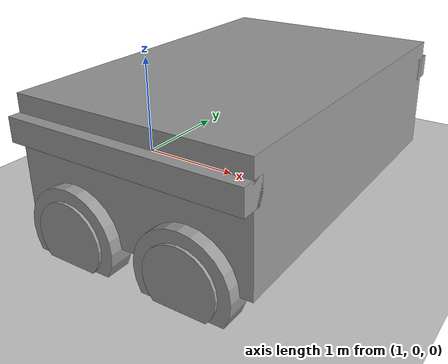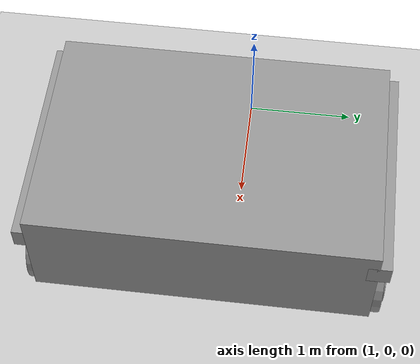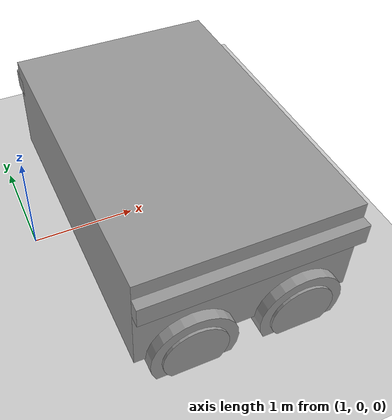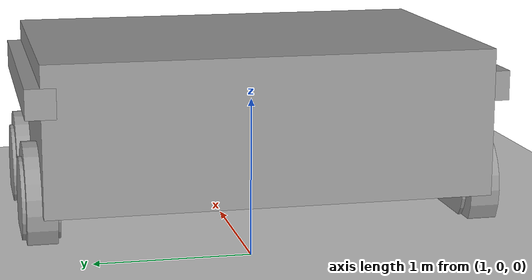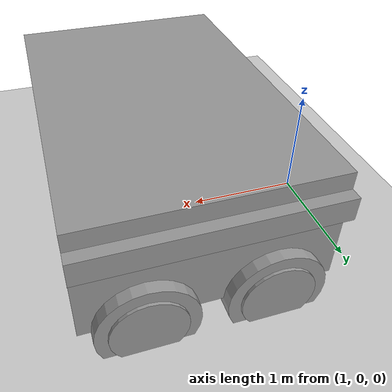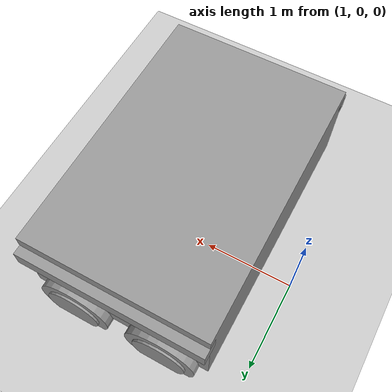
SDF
<sdf version="1.6">
 <world name="default">
  <light name="sun" type="directional">
   <pose>0 0 10 0 -0 0</pose>
   <diffuse>0.8 0.8 0.8 1</diffuse>
   <specular>0.2 0.2 0.2 1</specular>
   <attenuation>
    <range>1000</range>
    <constant>0.9</constant>
    <linear>0.01</linear>
    <quadratic>0.001</quadratic>
   </attenuation>
   <direction>-0.5 0.1 -0.9</direction>
  </light>
  <model name="ground_plane">
   <static>1</static>
   <link name="link">
    <collision name="collision">
     <geometry><plane><normal>0 0 1</normal><size>100 100</size></plane></geometry>
     <surface><friction><ode><mu>100</mu><mu2>50</mu2></ode></friction></surface>
    </collision>
    <visual name="visual">
     <cast_shadows>0</cast_shadows>
     <geometry><plane><normal>0 0 1</normal><size>100 100</size></plane></geometry>
     <material>
      <script><uri>file://media/materials/scripts/gazebo.material</uri><name>Gazebo/Grey</name></script>
     </material>
    </visual>
   </link>
  </model>
  <gravity>0 0 -9.8</gravity>
  <magnetic_field>6e-06 2.3e-05 -4.2e-05</magnetic_field>
  <atmosphere type="adiabatic"/>
  <physics name="default_physics" default="0" type="ode">
   <max_step_size>0.001</max_step_size>
   <real_time_factor>1</real_time_factor>
   <real_time_update_rate>1000</real_time_update_rate>
  </physics>
  <scene><ambient>0.4 0.4 0.4 1</ambient><background>0.7 0.7 0.7 1</background><shadows>1</shadows></scene>
  <spherical_coordinates>
   <surface_model>EARTH_WGS84</surface_model>
   <latitude_deg>0</latitude_deg>
   <longitude_deg>0</longitude_deg>
   <elevation>0</elevation>
   <heading_deg>0</heading_deg>
  </spherical_coordinates>
  <model name="unit_box">
   <link name="base">
    <inertial>
     <mass>1</mass>
     <inertia>
      <ixx>0.166667</ixx>
      <ixy>0</ixy>
      <ixz>0</ixz>
      <iyy>0.166667</iyy>
      <iyz>0</iyz>
      <izz>0.166667</izz>
     </inertia>
    </inertial>
    <pose>0 0 1 0 -0 0</pose>
    <visual name="visual">
     <geometry><box><size>2 3 1</size></box></geometry>
     <material>
      <script><name>Gazebo/Grey</name><uri>file://media/materials/scripts/gazebo.material</uri></script>
      <shader type="pixel"><normal_map>__default__</normal_map></shader>
      <ambient>0.3 0.3 0.3 1</ambient>
      <diffuse>0.7 0.7 0.7 1</diffuse>
      <specular>0.01 0.01 0.01 1</specular>
      <emissive>0 0 0 1</emissive>
     </material>
    </visual>
    <collision name="collision">
     <geometry><box><size>2 3 1</size></box></geometry>
     <surface>
      <friction>
       <ode><mu>1</mu><mu2>1</mu2><fdir1>0 0 0</fdir1><slip1>0</slip1><slip2>0</slip2></ode>
       <torsional>
        <coefficient>1</coefficient>
        <patch_radius>0</patch_radius>
        <surface_radius>0</surface_radius>
        <use_patch_radius>1</use_patch_radius>
        <ode><slip>0</slip></ode>
       </torsional>
      </friction>
      <bounce><restitution_coefficient>0</restitution_coefficient><threshold>1e+06</threshold></bounce>
      <contact>
       <collide_without_contact>0</collide_without_contact>
       <collide_without_contact_bitmask>1</collide_without_contact_bitmask>
       <collide_bitmask>1</collide_bitmask>
       <ode>
        <soft_cfm>0</soft_cfm>
        <soft_erp>0.2</soft_erp>
        <kp>1e+13</kp>
        <kd>1</kd>
        <max_vel>0.01</max_vel>
        <min_depth>0</min_depth>
       </ode>
       <bullet>
        <split_impulse>1</split_impulse>
        <split_impulse_penetration_threshold>-0.01</split_impulse_penetration_threshold>
        <soft_cfm>0</soft_cfm>
        <soft_erp>0.2</soft_erp>
        <kp>1e+13</kp>
        <kd>1</kd>
       </bullet>
      </contact>
     </surface>
    </collision>
   </link>
   <link name="link_left">
    <inertial>
     <mass>1</mass>
     <inertia>
      <ixx>0.166667</ixx>
      <ixy>0</ixy>
      <ixz>0</ixz>
      <iyy>0.166667</iyy>
      <iyz>0</iyz>
      <izz>0.166667</izz>
     </inertia>
    </inertial>
    <pose>0 1.5 1.25 0 -0 0</pose>
    <visual name="visual">
     <geometry><box><size>2 0.2 0.2</size></box></geometry>
     <material>
      <lighting>1</lighting>
      <script><uri>file://media/materials/scripts/gazebo.material</uri><name>Gazebo/Grey</name></script>
      <shader type="pixel"><normal_map>__default__</normal_map></shader>
      <ambient>0.3 0.3 0.3 1</ambient>
      <diffuse>0.7 0.7 0.7 1</diffuse>
      <specular>0.01 0.01 0.01 1</specular>
      <emissive>0 0 0 1</emissive>
     </material>
    </visual>
    <collision name="collision">
     <geometry><box><size>2 0.2 0.2</size></box></geometry>
     <surface>
      <friction>
       <ode><mu>1</mu><mu2>1</mu2><fdir1>0 0 0</fdir1><slip1>0</slip1><slip2>0</slip2></ode>
       <torsional>
        <coefficient>1</coefficient>
        <patch_radius>0</patch_radius>
        <surface_radius>0</surface_radius>
        <use_patch_radius>1</use_patch_radius>
        <ode><slip>0</slip></ode>
       </torsional>
      </friction>
      <bounce><restitution_coefficient>0</restitution_coefficient><threshold>1e+06</threshold></bounce>
      <contact>
       <collide_without_contact>0</collide_without_contact>
       <collide_without_contact_bitmask>1</collide_without_contact_bitmask>
       <collide_bitmask>1</collide_bitmask>
       <ode>
        <soft_cfm>0</soft_cfm>
        <soft_erp>0.2</soft_erp>
        <kp>1e+13</kp>
        <kd>1</kd>
        <max_vel>0.01</max_vel>
        <min_depth>0</min_depth>
       </ode>
       <bullet>
        <split_impulse>1</split_impulse>
        <split_impulse_penetration_threshold>-0.01</split_impulse_penetration_threshold>
        <soft_cfm>0</soft_cfm>
        <soft_erp>0.2</soft_erp>
        <kp>1e+13</kp>
        <kd>1</kd>
       </bullet>
      </contact>
     </surface>
    </collision>
   </link>
   <link name="link_right">
    <inertial>
     <mass>1</mass>
     <inertia>
      <ixx>0.166667</ixx>
      <ixy>0</ixy>
      <ixz>0</ixz>
      <iyy>0.166667</iyy>
      <iyz>0</iyz>
      <izz>0.166667</izz>
     </inertia>
    </inertial>
    <pose>-0 -1.5 1.25 -1e-05 -0 0</pose>
    <visual name="visual">
     <geometry><box><size>2 0.2 0.2</size></box></geometry>
     <material>
      <lighting>1</lighting>
      <script><uri>file://media/materials/scripts/gazebo.material</uri><name>Gazebo/Grey</name></script>
      <shader type="pixel"><normal_map>__default__</normal_map></shader>
      <ambient>0.3 0.3 0.3 1</ambient>
      <diffuse>0.7 0.7 0.7 1</diffuse>
      <specular>0.01 0.01 0.01 1</specular>
      <emissive>0 0 0 1</emissive>
     </material>
    </visual>
    <collision name="collision">
     <geometry><box><size>2 0.2 0.2</size></box></geometry>
     <surface>
      <friction>
       <ode><mu>1</mu><mu2>1</mu2><fdir1>0 0 0</fdir1><slip1>0</slip1><slip2>0</slip2></ode>
       <torsional>
        <coefficient>1</coefficient>
        <patch_radius>0</patch_radius>
        <surface_radius>0</surface_radius>
        <use_patch_radius>1</use_patch_radius>
        <ode><slip>0</slip></ode>
       </torsional>
      </friction>
      <bounce><restitution_coefficient>0</restitution_coefficient><threshold>1e+06</threshold></bounce>
      <contact>
       <collide_without_contact>0</collide_without_contact>
       <collide_without_contact_bitmask>1</collide_without_contact_bitmask>
       <collide_bitmask>1</collide_bitmask>
       <ode>
        <soft_cfm>0</soft_cfm>
        <soft_erp>0.2</soft_erp>
        <kp>1e+13</kp>
        <kd>1</kd>
        <max_vel>0.01</max_vel>
        <min_depth>0</min_depth>
       </ode>
       <bullet>
        <split_impulse>1</split_impulse>
        <split_impulse_penetration_threshold>-0.01</split_impulse_penetration_threshold>
        <soft_cfm>0</soft_cfm>
        <soft_erp>0.2</soft_erp>
        <kp>1e+13</kp>
        <kd>1</kd>
       </bullet>
      </contact>
     </surface>
    </collision>
   </link>
   <link name="link_rf_rev">
    <inertial>
     <mass>1</mass>
     <inertia><ixx>0.145833</ixx><ixy>0</ixy><ixz>0</ixz><iyy>0.145833</iyy><iyz>0</iyz><izz>0.125</izz></inertia>
    </inertial>
    <pose>0.5 -1.5 0.5 1.5708 -0 0</pose>
    <visual name="visual">
     <geometry><cylinder><radius>0.4</radius><length>0.2</length></cylinder></geometry>
     <material>
      <lighting>1</lighting>
      <script><uri>file://media/materials/scripts/gazebo.material</uri><name>Gazebo/Grey</name></script>
      <shader type="pixel"><normal_map>__default__</normal_map></shader>
      <ambient>0.3 0.3 0.3 1</ambient>
      <diffuse>0.7 0.7 0.7 1</diffuse>
      <specular>0.01 0.01 0.01 1</specular>
      <emissive>0 0 0 1</emissive>
     </material>
    </visual>
    <collision name="collision">
     <geometry><cylinder><radius>0.4</radius><length>0.2</length></cylinder></geometry>
     <surface>
      <friction>
       <ode><mu>1</mu><mu2>1</mu2><fdir1>0 0 0</fdir1><slip1>0</slip1><slip2>0</slip2></ode>
       <torsional>
        <coefficient>1</coefficient>
        <patch_radius>0</patch_radius>
        <surface_radius>0</surface_radius>
        <use_patch_radius>1</use_patch_radius>
        <ode><slip>0</slip></ode>
       </torsional>
      </friction>
      <bounce><restitution_coefficient>0</restitution_coefficient><threshold>1e+06</threshold></bounce>
      <contact>
       <collide_without_contact>0</collide_without_contact>
       <collide_without_contact_bitmask>1</collide_without_contact_bitmask>
       <collide_bitmask>1</collide_bitmask>
       <ode>
        <soft_cfm>0</soft_cfm>
        <soft_erp>0.2</soft_erp>
        <kp>1e+13</kp>
        <kd>1</kd>
        <max_vel>0.01</max_vel>
        <min_depth>0</min_depth>
       </ode>
       <bullet>
        <split_impulse>1</split_impulse>
        <split_impulse_penetration_threshold>-0.01</split_impulse_penetration_threshold>
        <soft_cfm>0</soft_cfm>
        <soft_erp>0.2</soft_erp>
        <kp>1e+13</kp>
        <kd>1</kd>
       </bullet>
      </contact>
     </surface>
    </collision>
   </link>
   <link name="link_lf_rev">
    <inertial>
     <mass>1</mass>
     <inertia><ixx>0.145833</ixx><ixy>0</ixy><ixz>0</ixz><iyy>0.145833</iyy><iyz>0</iyz><izz>0.125</izz></inertia>
    </inertial>
    <pose>0.5 1.5 0.5 1.57079 -0 0</pose>
    <visual name="visual">
     <geometry><cylinder><radius>0.4</radius><length>0.2</length></cylinder></geometry>
     <material>
      <lighting>1</lighting>
      <script><uri>file://media/materials/scripts/gazebo.material</uri><name>Gazebo/Grey</name></script>
      <shader type="pixel"><normal_map>__default__</normal_map></shader>
      <ambient>0.3 0.3 0.3 1</ambient>
      <diffuse>0.7 0.7 0.7 1</diffuse>
      <specular>0.01 0.01 0.01 1</specular>
      <emissive>0 0 0 1</emissive>
     </material>
    </visual>
    <collision name="collision">
     <geometry><cylinder><radius>0.4</radius><length>0.2</length></cylinder></geometry>
     <surface>
      <friction>
       <ode><mu>1</mu><mu2>1</mu2><fdir1>0 0 0</fdir1><slip1>0</slip1><slip2>0</slip2></ode>
       <torsional>
        <coefficient>1</coefficient>
        <patch_radius>0</patch_radius>
        <surface_radius>0</surface_radius>
        <use_patch_radius>1</use_patch_radius>
        <ode><slip>0</slip></ode>
       </torsional>
      </friction>
      <bounce><restitution_coefficient>0</restitution_coefficient><threshold>1e+06</threshold></bounce>
      <contact>
       <collide_without_contact>0</collide_without_contact>
       <collide_without_contact_bitmask>1</collide_without_contact_bitmask>
       <collide_bitmask>1</collide_bitmask>
       <ode>
        <soft_cfm>0</soft_cfm>
        <soft_erp>0.2</soft_erp>
        <kp>1e+13</kp>
        <kd>1</kd>
        <max_vel>0.01</max_vel>
        <min_depth>0</min_depth>
       </ode>
       <bullet>
        <split_impulse>1</split_impulse>
        <split_impulse_penetration_threshold>-0.01</split_impulse_penetration_threshold>
        <soft_cfm>0</soft_cfm>
        <soft_erp>0.2</soft_erp>
        <kp>1e+13</kp>
        <kd>1</kd>
       </bullet>
      </contact>
     </surface>
    </collision>
   </link>
   <link name="link_rb_rev">
    <inertial>
     <mass>1</mass>
     <inertia><ixx>0.145833</ixx><ixy>0</ixy><ixz>0</ixz><iyy>0.145833</iyy><iyz>0</iyz><izz>0.125</izz></inertia>
    </inertial>
    <pose>-0.5 -1.5 0.5 1.5708 -0 0</pose>
    <visual name="visual">
     <geometry><cylinder><radius>0.4</radius><length>0.2</length></cylinder></geometry>
     <material>
      <lighting>1</lighting>
      <script><uri>file://media/materials/scripts/gazebo.material</uri><name>Gazebo/Grey</name></script>
      <shader type="pixel"><normal_map>__default__</normal_map></shader>
      <ambient>0.3 0.3 0.3 1</ambient>
      <diffuse>0.7 0.7 0.7 1</diffuse>
      <specular>0.01 0.01 0.01 1</specular>
      <emissive>0 0 0 1</emissive>
     </material>
    </visual>
    <collision name="collision">
     <geometry><cylinder><radius>0.4</radius><length>0.2</length></cylinder></geometry>
     <surface>
      <friction>
       <ode><mu>1</mu><mu2>1</mu2><fdir1>0 0 0</fdir1><slip1>0</slip1><slip2>0</slip2></ode>
       <torsional>
        <coefficient>1</coefficient>
        <patch_radius>0</patch_radius>
        <surface_radius>0</surface_radius>
        <use_patch_radius>1</use_patch_radius>
        <ode><slip>0</slip></ode>
       </torsional>
      </friction>
      <bounce><restitution_coefficient>0</restitution_coefficient><threshold>1e+06</threshold></bounce>
      <contact>
       <collide_without_contact>0</collide_without_contact>
       <collide_without_contact_bitmask>1</collide_without_contact_bitmask>
       <collide_bitmask>1</collide_bitmask>
       <ode>
        <soft_cfm>0</soft_cfm>
        <soft_erp>0.2</soft_erp>
        <kp>1e+13</kp>
        <kd>1</kd>
        <max_vel>0.01</max_vel>
        <min_depth>0</min_depth>
       </ode>
       <bullet>
        <split_impulse>1</split_impulse>
        <split_impulse_penetration_threshold>-0.01</split_impulse_penetration_threshold>
        <soft_cfm>0</soft_cfm>
        <soft_erp>0.2</soft_erp>
        <kp>1e+13</kp>
        <kd>1</kd>
       </bullet>
      </contact>
     </surface>
    </collision>
   </link>
   <link name="link_rb_fix">
    <inertial>
     <mass>1</mass>
     <inertia><ixx>0.145833</ixx><ixy>0</ixy><ixz>0</ixz><iyy>0.145833</iyy><iyz>0</iyz><izz>0.125</izz></inertia>
    </inertial>
    <pose>-0.5 -1.5 0.5 1.57079 -0 0</pose>
    <visual name="visual">
     <geometry><cylinder><radius>0.3</radius><length>0.25</length></cylinder></geometry>
     <material>
      <lighting>1</lighting>
      <script><uri>file://media/materials/scripts/gazebo.material</uri><name>Gazebo/Grey</name></script>
      <shader type="pixel"><normal_map>__default__</normal_map></shader>
      <ambient>0.3 0.3 0.3 1</ambient>
      <diffuse>0.7 0.7 0.7 1</diffuse>
      <specular>0.01 0.01 0.01 1</specular>
      <emissive>0 0 0 1</emissive>
     </material>
    </visual>
    <collision name="collision">
     <geometry><cylinder><radius>0.3</radius><length>0.25</length></cylinder></geometry>
     <surface>
      <friction>
       <ode><mu>1</mu><mu2>1</mu2><fdir1>0 0 0</fdir1><slip1>0</slip1><slip2>0</slip2></ode>
       <torsional>
        <coefficient>1</coefficient>
        <patch_radius>0</patch_radius>
        <surface_radius>0</surface_radius>
        <use_patch_radius>1</use_patch_radius>
        <ode><slip>0</slip></ode>
       </torsional>
      </friction>
      <bounce><restitution_coefficient>0</restitution_coefficient><threshold>1e+06</threshold></bounce>
      <contact>
       <collide_without_contact>0</collide_without_contact>
       <collide_without_contact_bitmask>1</collide_without_contact_bitmask>
       <collide_bitmask>1</collide_bitmask>
       <ode>
        <soft_cfm>0</soft_cfm>
        <soft_erp>0.2</soft_erp>
        <kp>1e+13</kp>
        <kd>1</kd>
        <max_vel>0.01</max_vel>
        <min_depth>0</min_depth>
       </ode>
       <bullet>
        <split_impulse>1</split_impulse>
        <split_impulse_penetration_threshold>-0.01</split_impulse_penetration_threshold>
        <soft_cfm>0</soft_cfm>
        <soft_erp>0.2</soft_erp>
        <kp>1e+13</kp>
        <kd>1</kd>
       </bullet>
      </contact>
     </surface>
    </collision>
   </link>
   <link name="link_lb_rev">
    <inertial>
     <mass>1</mass>
     <inertia><ixx>0.145833</ixx><ixy>0</ixy><ixz>0</ixz><iyy>0.145833</iyy><iyz>0</iyz><izz>0.125</izz></inertia>
    </inertial>
    <pose>-0.5 1.5 0.5 1.57079 -0 0</pose>
    <visual name="visual">
     <geometry><cylinder><radius>0.4</radius><length>0.2</length></cylinder></geometry>
     <material>
      <lighting>1</lighting>
      <script><uri>file://media/materials/scripts/gazebo.material</uri><name>Gazebo/Grey</name></script>
      <shader type="pixel"><normal_map>__default__</normal_map></shader>
      <ambient>0.3 0.3 0.3 1</ambient>
      <diffuse>0.7 0.7 0.7 1</diffuse>
      <specular>0.01 0.01 0.01 1</specular>
      <emissive>0 0 0 1</emissive>
     </material>
    </visual>
    <collision name="collision">
     <geometry><cylinder><radius>0.4</radius><length>0.2</length></cylinder></geometry>
     <surface>
      <friction>
       <ode><mu>1</mu><mu2>1</mu2><fdir1>0 0 0</fdir1><slip1>0</slip1><slip2>0</slip2></ode>
       <torsional>
        <coefficient>1</coefficient>
        <patch_radius>0</patch_radius>
        <surface_radius>0</surface_radius>
        <use_patch_radius>1</use_patch_radius>
        <ode><slip>0</slip></ode>
       </torsional>
      </friction>
      <bounce><restitution_coefficient>0</restitution_coefficient><threshold>1e+06</threshold></bounce>
      <contact>
       <collide_without_contact>0</collide_without_contact>
       <collide_without_contact_bitmask>1</collide_without_contact_bitmask>
       <collide_bitmask>1</collide_bitmask>
       <ode>
        <soft_cfm>0</soft_cfm>
        <soft_erp>0.2</soft_erp>
        <kp>1e+13</kp>
        <kd>1</kd>
        <max_vel>0.01</max_vel>
        <min_depth>0</min_depth>
       </ode>
       <bullet>
        <split_impulse>1</split_impulse>
        <split_impulse_penetration_threshold>-0.01</split_impulse_penetration_threshold>
        <soft_cfm>0</soft_cfm>
        <soft_erp>0.2</soft_erp>
        <kp>1e+13</kp>
        <kd>1</kd>
       </bullet>
      </contact>
     </surface>
    </collision>
   </link>
   <link name="link_lb_fix">
    <inertial>
     <mass>1</mass>
     <inertia><ixx>0.145833</ixx><ixy>0</ixy><ixz>0</ixz><iyy>0.145833</iyy><iyz>0</iyz><izz>0.125</izz></inertia>
    </inertial>
    <pose>-0.5 1.5 0.5 1.57078 -0 0</pose>
    <visual name="visual">
     <geometry><cylinder><radius>0.3</radius><length>0.25</length></cylinder></geometry>
     <material>
      <lighting>1</lighting>
      <script><uri>file://media/materials/scripts/gazebo.material</uri><name>Gazebo/Grey</name></script>
      <shader type="pixel"><normal_map>__default__</normal_map></shader>
      <ambient>0.3 0.3 0.3 1</ambient>
      <diffuse>0.7 0.7 0.7 1</diffuse>
      <specular>0.01 0.01 0.01 1</specular>
      <emissive>0 0 0 1</emissive>
     </material>
    </visual>
    <collision name="collision">
     <geometry><cylinder><radius>0.3</radius><length>0.25</length></cylinder></geometry>
     <surface>
      <friction>
       <ode><mu>1</mu><mu2>1</mu2><fdir1>0 0 0</fdir1><slip1>0</slip1><slip2>0</slip2></ode>
       <torsional>
        <coefficient>1</coefficient>
        <patch_radius>0</patch_radius>
        <surface_radius>0</surface_radius>
        <use_patch_radius>1</use_patch_radius>
        <ode><slip>0</slip></ode>
       </torsional>
      </friction>
      <bounce><restitution_coefficient>0</restitution_coefficient><threshold>1e+06</threshold></bounce>
      <contact>
       <collide_without_contact>0</collide_without_contact>
       <collide_without_contact_bitmask>1</collide_without_contact_bitmask>
       <collide_bitmask>1</collide_bitmask>
       <ode>
        <soft_cfm>0</soft_cfm>
        <soft_erp>0.2</soft_erp>
        <kp>1e+13</kp>
        <kd>1</kd>
        <max_vel>0.01</max_vel>
        <min_depth>0</min_depth>
       </ode>
       <bullet>
        <split_impulse>1</split_impulse>
        <split_impulse_penetration_threshold>-0.01</split_impulse_penetration_threshold>
        <soft_cfm>0</soft_cfm>
        <soft_erp>0.2</soft_erp>
        <kp>1e+13</kp>
        <kd>1</kd>
       </bullet>
      </contact>
     </surface>
    </collision>
   </link>
   <link name="link_rf_fix">
    <inertial>
     <mass>1</mass>
     <inertia><ixx>0.145833</ixx><ixy>0</ixy><ixz>0</ixz><iyy>0.145833</iyy><iyz>0</iyz><izz>0.125</izz></inertia>
    </inertial>
    <pose>0.5 -1.5 0.5 1.57079 -0 0</pose>
    <visual name="visual">
     <geometry><cylinder><radius>0.3</radius><length>0.25</length></cylinder></geometry>
     <material>
      <lighting>1</lighting>
      <script><uri>file://media/materials/scripts/gazebo.material</uri><name>Gazebo/Grey</name></script>
      <shader type="pixel"><normal_map>__default__</normal_map></shader>
      <ambient>0.3 0.3 0.3 1</ambient>
      <diffuse>0.7 0.7 0.7 1</diffuse>
      <specular>0.01 0.01 0.01 1</specular>
      <emissive>0 0 0 1</emissive>
     </material>
    </visual>
    <collision name="collision">
     <geometry><cylinder><radius>0.3</radius><length>0.25</length></cylinder></geometry>
     <surface>
      <friction>
       <ode><mu>1</mu><mu2>1</mu2><fdir1>0 0 0</fdir1><slip1>0</slip1><slip2>0</slip2></ode>
       <torsional>
        <coefficient>1</coefficient>
        <patch_radius>0</patch_radius>
        <surface_radius>0</surface_radius>
        <use_patch_radius>1</use_patch_radius>
        <ode><slip>0</slip></ode>
       </torsional>
      </friction>
      <bounce><restitution_coefficient>0</restitution_coefficient><threshold>1e+06</threshold></bounce>
      <contact>
       <collide_without_contact>0</collide_without_contact>
       <collide_without_contact_bitmask>1</collide_without_contact_bitmask>
       <collide_bitmask>1</collide_bitmask>
       <ode>
        <soft_cfm>0</soft_cfm>
        <soft_erp>0.2</soft_erp>
        <kp>1e+13</kp>
        <kd>1</kd>
        <max_vel>0.01</max_vel>
        <min_depth>0</min_depth>
       </ode>
       <bullet>
        <split_impulse>1</split_impulse>
        <split_impulse_penetration_threshold>-0.01</split_impulse_penetration_threshold>
        <soft_cfm>0</soft_cfm>
        <soft_erp>0.2</soft_erp>
        <kp>1e+13</kp>
        <kd>1</kd>
       </bullet>
      </contact>
     </surface>
    </collision>
   </link>
   <link name="link_lf_fix">
    <inertial>
     <mass>1</mass>
     <inertia><ixx>0.145833</ixx><ixy>0</ixy><ixz>0</ixz><iyy>0.145833</iyy><iyz>0</iyz><izz>0.125</izz></inertia>
    </inertial>
    <pose>0.5 1.5 0.5 1.57078 -0 0</pose>
    <visual name="visual">
     <geometry><cylinder><radius>0.3</radius><length>0.25</length></cylinder></geometry>
     <material>
      <lighting>1</lighting>
      <script><uri>file://media/materials/scripts/gazebo.material</uri><name>Gazebo/Grey</name></script>
      <shader type="pixel"><normal_map>__default__</normal_map></shader>
      <ambient>0.3 0.3 0.3 1</ambient>
      <diffuse>0.7 0.7 0.7 1</diffuse>
      <specular>0.01 0.01 0.01 1</specular>
      <emissive>0 0 0 1</emissive>
     </material>
    </visual>
    <collision name="collision">
     <geometry><cylinder><radius>0.3</radius><length>0.25</length></cylinder></geometry>
     <surface>
      <friction>
       <ode><mu>1</mu><mu2>1</mu2><fdir1>0 0 0</fdir1><slip1>0</slip1><slip2>0</slip2></ode>
       <torsional>
        <coefficient>1</coefficient>
        <patch_radius>0</patch_radius>
        <surface_radius>0</surface_radius>
        <use_patch_radius>1</use_patch_radius>
        <ode><slip>0</slip></ode>
       </torsional>
      </friction>
      <bounce><restitution_coefficient>0</restitution_coefficient><threshold>1e+06</threshold></bounce>
      <contact>
       <collide_without_contact>0</collide_without_contact>
       <collide_without_contact_bitmask>1</collide_without_contact_bitmask>
       <collide_bitmask>1</collide_bitmask>
       <ode>
        <soft_cfm>0</soft_cfm>
        <soft_erp>0.2</soft_erp>
        <kp>1e+13</kp>
        <kd>1</kd>
        <max_vel>0.01</max_vel>
        <min_depth>0</min_depth>
       </ode>
       <bullet>
        <split_impulse>1</split_impulse>
        <split_impulse_penetration_threshold>-0.01</split_impulse_penetration_threshold>
        <soft_cfm>0</soft_cfm>
        <soft_erp>0.2</soft_erp>
        <kp>1e+13</kp>
        <kd>1</kd>
       </bullet>
      </contact>
     </surface>
    </collision>
   </link>
   <joint name="joint_rb_rev" type="revolute">
    <parent>link_rb_fix</parent>
    <child>link_rb_rev</child>
    <axis>
     <xyz>0 0 -1</xyz>
     <use_parent_model_frame>0</use_parent_model_frame>
     <limit>
      <lower>-1.79769e+308</lower>
      <upper>1.79769e+308</upper>
      <effort>-1</effort>
      <velocity>-1</velocity>
     </limit>
     <dynamics>
      <spring_reference>0</spring_reference>
      <spring_stiffness>0</spring_stiffness>
      <damping>0</damping>
      <friction>0</friction>
     </dynamics>
    </axis>
    <physics>
     <ode><limit><cfm>0</cfm><erp>0.2</erp></limit><suspension><cfm>0</cfm><erp>0.2</erp></suspension></ode>
    </physics>
   </joint>
   <joint name="joint_lb_rev" type="revolute">
    <parent>link_lb_fix</parent>
    <child>link_lb_rev</child>
    <axis>
     <xyz>0 0 1</xyz>
     <use_parent_model_frame>0</use_parent_model_frame>
     <limit>
      <lower>-1.79769e+308</lower>
      <upper>1.79769e+308</upper>
      <effort>-1</effort>
      <velocity>-1</velocity>
     </limit>
     <dynamics>
      <spring_reference>0</spring_reference>
      <spring_stiffness>0</spring_stiffness>
      <damping>0</damping>
      <friction>0</friction>
     </dynamics>
    </axis>
    <physics>
     <ode><limit><cfm>0</cfm><erp>0.2</erp></limit><suspension><cfm>0</cfm><erp>0.2</erp></suspension></ode>
    </physics>
   </joint>
   <joint name="joint_rf_rev" type="revolute">
    <parent>link_rf_fix</parent>
    <child>link_rf_rev</child>
    <axis>
     <xyz>0 0 -1</xyz>
     <use_parent_model_frame>0</use_parent_model_frame>
     <limit>
      <lower>-1.79769e+308</lower>
      <upper>1.79769e+308</upper>
      <effort>-1</effort>
      <velocity>-1</velocity>
     </limit>
     <dynamics>
      <spring_reference>0</spring_reference>
      <spring_stiffness>0</spring_stiffness>
      <damping>0</damping>
      <friction>0</friction>
     </dynamics>
    </axis>
    <physics>
     <ode><limit><cfm>0</cfm><erp>0.2</erp></limit><suspension><cfm>0</cfm><erp>0.2</erp></suspension></ode>
    </physics>
   </joint>
   <joint name="joint_lf_rev" type="revolute">
    <parent>link_lf_fix</parent>
    <child>link_lf_rev</child>
    <axis>
     <xyz>0 0 1</xyz>
     <use_parent_model_frame>0</use_parent_model_frame>
     <limit>
      <lower>-1.79769e+308</lower>
      <upper>1.79769e+308</upper>
      <effort>-1</effort>
      <velocity>-1</velocity>
     </limit>
     <dynamics>
      <spring_reference>0</spring_reference>
      <spring_stiffness>0</spring_stiffness>
      <damping>0</damping>
      <friction>0</friction>
     </dynamics>
    </axis>
    <physics>
     <ode><limit><cfm>0</cfm><erp>0.2</erp></limit><suspension><cfm>0</cfm><erp>0.2</erp></suspension></ode>
    </physics>
   </joint>
   <joint name="joint_right" type="revolute">
    <parent>base</parent>
    <child>link_right</child>
    <pose>-1 0 0 0 -0 0</pose>
    <axis>
     <xyz>0 0 -1</xyz>
     <use_parent_model_frame>0</use_parent_model_frame>
     <limit><lower>0</lower><upper>1.5708</upper><effort>-1</effort><velocity>-1</velocity></limit>
     <dynamics>
      <spring_reference>0</spring_reference>
      <spring_stiffness>0</spring_stiffness>
      <damping>0</damping>
      <friction>0</friction>
     </dynamics>
    </axis>
    <physics>
     <ode><limit><cfm>0</cfm><erp>0.2</erp></limit><suspension><cfm>0</cfm><erp>0.2</erp></suspension></ode>
    </physics>
   </joint>
   <joint name="joint_left" type="revolute">
    <parent>base</parent>
    <child>link_left</child>
    <pose>-1 0 0 0 -0 0</pose>
    <axis>
     <xyz>-0 -0 1</xyz>
     <use_parent_model_frame>0</use_parent_model_frame>
     <limit><lower>0</lower><upper>1.5708</upper><effort>-1</effort><velocity>-1</velocity></limit>
     <dynamics>
      <spring_reference>0</spring_reference>
      <spring_stiffness>0</spring_stiffness>
      <damping>0</damping>
     </dynamics>
    </axis>
    <physics>
     <ode><limit><cfm>0</cfm><erp>0.2</erp></limit><suspension><cfm>0</cfm><erp>0.2</erp></suspension></ode>
    </physics>
   </joint>
   <joint name="joint_rb_fix" type="prismatic">
    <parent>base</parent>
    <child>link_rb_fix</child>
    <axis>
     <xyz>0 1 0</xyz>
     <use_parent_model_frame>0</use_parent_model_frame>
     <limit><lower>-0.3</lower><upper>0.2</upper><effort>-1</effort><velocity>-1</velocity></limit>
     <dynamics>
      <spring_reference>0</spring_reference>
      <spring_stiffness>0</spring_stiffness>
      <damping>0</damping>
     </dynamics>
    </axis>
    <physics>
     <ode><limit><cfm>0</cfm><erp>0.2</erp></limit><suspension><cfm>0</cfm><erp>0.2</erp></suspension></ode>
    </physics>
   </joint>
   <joint name="joint_rf_fix" type="prismatic">
    <parent>base</parent>
    <child>link_rf_fix</child>
    <pose>0 0 -0.02 0 -0 0</pose>
    <axis>
     <xyz>0 1 0</xyz>
     <use_parent_model_frame>0</use_parent_model_frame>
     <limit><lower>-0.3</lower><upper>0.2</upper><effort>-1</effort><velocity>-1</velocity></limit>
     <dynamics>
      <spring_reference>0</spring_reference>
      <spring_stiffness>0</spring_stiffness>
      <damping>0</damping>
     </dynamics>
    </axis>
    <physics>
     <ode><limit><cfm>0</cfm><erp>0.2</erp></limit><suspension><cfm>0</cfm><erp>0.2</erp></suspension></ode>
    </physics>
   </joint>
   <joint name="joint_lf_fix" type="prismatic">
    <parent>base</parent>
    <child>link_lf_fix</child>
    <axis>
     <xyz>0 1 0</xyz>
     <use_parent_model_frame>0</use_parent_model_frame>
     <limit><lower>-0.3</lower><upper>0.2</upper><effort>-1</effort><velocity>-1</velocity></limit>
     <dynamics>
      <spring_reference>0</spring_reference>
      <spring_stiffness>0</spring_stiffness>
      <damping>0</damping>
     </dynamics>
    </axis>
    <physics>
     <ode><limit><cfm>0</cfm><erp>0.2</erp></limit><suspension><cfm>0</cfm><erp>0.2</erp></suspension></ode>
    </physics>
   </joint>
   <joint name="joint_lb_fix" type="prismatic">
    <parent>base</parent>
    <child>link_lb_fix</child>
    <axis>
     <xyz>0 1 0</xyz>
     <use_parent_model_frame>0</use_parent_model_frame>
     <limit><lower>-0.3</lower><upper>0.2</upper><effort>-1</effort><velocity>-1</velocity></limit>
     <dynamics>
      <spring_reference>0</spring_reference>
      <spring_stiffness>0</spring_stiffness>
      <damping>0</damping>
     </dynamics>
    </axis>
    <physics>
     <ode><limit><cfm>0</cfm><erp>0.2</erp></limit><suspension><cfm>0</cfm><erp>0.2</erp></suspension></ode>
    </physics>
   </joint>
   <static>0</static>
   <pose>2.33419 -0.23034 -0.300004 3e-06 -8e-06 0.001417</pose>
  </model>
 </world>
</sdf>
